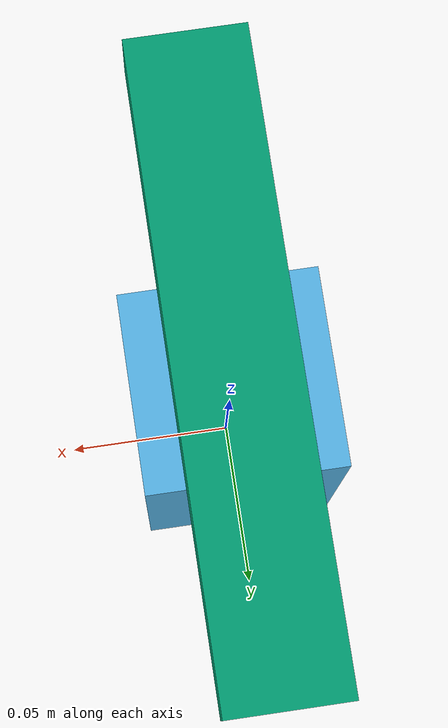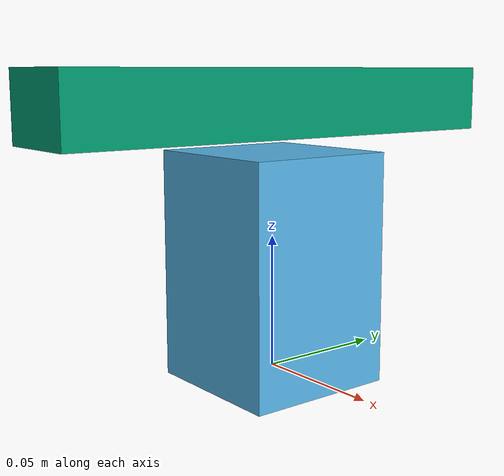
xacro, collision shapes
<?xml version="1.0"?>

<robot name="quadrotor" xmlns:xacro="http://www.ros.org/wiki/xacro">

    <xacro:property name="M_PI" value="3.1415926535897931" />

    <!-- Included URDF Files -->
    <xacro:include filename="$(find odroid)/robot_description/urdf/quad.xacro" />

    <!-- Instantiate quadrotor_base_macro once (has no parameters atm) -->
    <xacro:quadrotor_base_macro />

    <xacro:arg name="world_frame" default="world"/>
    <xacro:arg name="base_link_frame" default="base_link"/>

    <xacro:include filename="$(find odroid)/robot_description/urdf/hokuyo_utm30lx.urdf.xacro" />
    <xacro:hokuyo_utm30lx name="laser0" parent="base_link" ros_topic="scan" update_rate="40" ray_count="640" min_angle="-50" max_angle="50">
      <origin xyz="0.0 0.0 0.05" rpy="0 0 0"/>
    </xacro:hokuyo_utm30lx>

    <xacro:include filename="$(find odroid)/robot_description/urdf/asus.urdf.xacro" />
    <xacro:asus_camera name="camera" parent="base_link">
      <origin xyz="0.0 0.0 0.1" rpy="0 0 0"/>
    </xacro:asus_camera>

    <xacro:include filename="$(find odroid)/robot_description/urdf/quadrotor_plugins.gazebo.xacro" />

</robot>

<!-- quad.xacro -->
<robot name="quadrotor" xmlns:xacro="http://www.ros.org/wiki/xacro">

  <!-- Constants for robot dimensions -->
  <xacro:property name="PI" value="3.1415926535897931"/>
  <xacro:property name="mass" value="0.755" /> <!-- arbitrary value for mass -->
  <xacro:property name="width" value="0.1" /> <!-- Square dimensions (widthxwidth) of beams -->
  <xacro:property name="height1" value="2" /> <!-- Link 1 -->
  <xacro:property name="height2" value="1" /> <!-- Link 2 -->
  <xacro:property name="height3" value="1" /> <!-- Link 3 -->
  <xacro:property name="camera_link" value="0.05" /> <!-- Size of square 'camera' box -->
  <xacro:property name="axel_offset" value="0.05" /> <!-- Space btw top of beam and the each joint -->

<!-- From Matlab

J1=55710.50413e-7;
J2=55710.50413e-7;
J3=105053.7595e-7;
J=diag([J1 J2 J3]);
m=0.755;

-->

  <xacro:macro name="quadrotor_base_macro">
  <link name="base_link">
  <gravity>true</gravity>
    <inertial>
      <origin xyz="0 0 0" rpy="0 0 0"/>
      <mass value="1.374"/>
      <inertia
        ixx="0.009773" ixy="0.0" ixz="0.0"
        iyy="0.009773" iyz="0.0"
        izz="0.01749"/>
    </inertial>
    <origin xyz="0 0 0" rpy="0 0 0" />
    <collision name='collision'>
      <geometry>
        <sphere radius = "0.0001" />
      </geometry>
    </collision>

    <visual name="quadrotor_center">
  <geometry>
  <cylinder radius="0.05" length="0.02" />
  </geometry>
  <material name="orange">
  <color rgba="${255/255} ${108/255} ${10/255} 1.0"/>
  </material>
    </visual>

    <visual name='quadrotor_x_arms'>
  <origin xyz = "0.0 0.0 0.0" rpy ="0.0 1.5707 0.0" />
  <geometry>
  <cylinder radius=".006" length="0.66" />
  </geometry>
  <material name="orange">
  <ambient> 0 0 0 1 </ambient>
  </material>
    </visual>

    <visual name='quadrotor_y_arms'>
<origin xyz="0.0 0.0 0.0" rpy="0.0 1.5707 1.5707" />
<geometry>
  <cylinder radius=".006" length="0.66" />
</geometry>
<material name="orange">
<ambient> 0 0 0 1 </ambient>
</material>
    </visual>

    <visual name='motor_pos_x'>
<origin xyz="0.33 0.0 0.006" rpy="0.0 0.0 0.0" />
<geometry>
<cylinder radius=".006" length="0.024" />
</geometry>
<material name="white">
  <ambient> 0.0 0.0 0.0 1.0 </ambient>
</material>
  </visual>
    <visual name='prop_pos_x'>
<origin xyz="0.33 0.0 0.02" rpy="0.0 0.0 0.0"/>
<geometry>
<cylinder radius=".1" length="0.01" />
</geometry>
<material name="white">
<ambient> 0.5 0.5 0.5 1.0 </ambient>
</material>
    </visual>
    <visual name='motor_neg_x'>
<origin xyz ="-0.33 0.0 0.006" rpy="0.0 0.0 0.0"/>
<geometry>
<cylinder radius=".006" length="0.024"/>
</geometry>
<material name="white">
<ambient> 0.0 0.0 0.0 1.0 </ambient>
</material>
    </visual>
    <visual name='prop_neg_x'>
<origin xyz="-0.33 0.0 0.02" rpy="0.0 0.0 0.0"/>
<geometry>
<cylinder   radius=".1" length="0.01" />
</geometry>
<material name="white">
<ambient> 0.5 0.5 0.5 1.0 </ambient>
</material>
    </visual>
    <visual name='motor_pos_y'>
<origin xyz="0.0 0.33 0.006" rpy="0.0 0.0 0.0"/>
<geometry>
<cylinder radius=".006" length="0.024" />
</geometry>
<material name="white">
<ambient> 0.0 0.0 0.0 1.0 </ambient>
</material>
    </visual>
    <visual name='prop_pos_y'>
<origin xyz="0.0 0.33 0.02" rpy="0.0 0.0 0.0" />
<geometry>
<cylinder radius = ".1" length="0.01"/>
</geometry>
<material name="white">
<ambient> 0.5 0.5 0.5 1.0 </ambient>
</material>
    </visual>
    <visual name='motor_neg_y'>
<origin xyz="0.0 -0.33 0.006" rpy="0.0 0.0 0.0"/>
<geometry>
<cylinder radius=".006" length="0.024"/>
</geometry>
<material name="white">
<ambient> 0.0 0.0 0.0 1.0 </ambient>
</material>
    </visual>
    <visual name='prop_neg_y'>
<origin xyz="0.0 -0.33 0.02" rpy = "0.0 0.0 0.0"/>
<geometry>
<cylinder radius=".1" length="0.01"/>
</geometry>
<material name="white">
<ambient> 0.5 0.5 0.5 1.0 </ambient>
</material>
    </visual>

  </link>
  </xacro:macro>
</robot>

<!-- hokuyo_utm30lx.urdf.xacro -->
<robot xmlns:xacro="http://ros.org/wiki/xacro">
    <xacro:property name="M_PI" value="3.1415926535897931" />

    <xacro:macro name="hokuyo_utm30lx" params="name parent *origin ros_topic update_rate ray_count min_angle max_angle">
      <joint name="${name}_joint" type="fixed">
        <xacro:insert_block name="origin" />
        <parent link="${parent}"/>
        <child link="${name}_frame"/>
      </joint>

      <link name="${name}_frame">
        <inertial>
          <mass value="0.270" />
          <origin xyz="0 0 0" rpy="0 0 0" />
          <inertia ixx="2.632e-4" ixy="0" ixz="0" iyy="2.632e-4" iyz="0" izz="1.62e-4" />
        </inertial>
        <visual>
          <origin xyz="0 0 0" rpy="0 0 0" />
          <geometry>
          <mesh filename="package://hector_sensors_description/meshes/hokuyo_utm30lx/hokuyo_utm_30lx$(optenv TEST_SELF_FILTER).dae"/>
        </geometry>
        </visual>
        <collision>
          <origin xyz="0 0 -0.0115" rpy="0 0 0" />
          <geometry>
          <box size="0.058 0.058 0.087" />
        </geometry>
        </collision>
      </link>

      <gazebo reference="${name}_frame">
        <sensor type="ray" name="${name}">
          <always_on>true</always_on>
          <update_rate>${update_rate}</update_rate>
          <pose>0 0 0 0 0 0</pose>
          <visualize>false</visualize>
          <ray>
            <scan>
              <horizontal>
                <samples>${ray_count}</samples>
                <resolution>1</resolution>
                <min_angle>${min_angle * M_PI/180}</min_angle>
                <max_angle>${max_angle * M_PI/180}</max_angle>
              </horizontal>
            </scan>
            <range>
              <min>0.08</min>
              <max>30.0</max>
              <resolution>0.01</resolution>
            </range>
          </ray>
          <plugin name="gazebo_ros_${name}_controller" filename="libgazebo_ros_laser.so">
            <gaussianNoise>0.005</gaussianNoise>
            <alwaysOn>true</alwaysOn>
            <updateRate>${update_rate}</updateRate>
            <topicName>${ros_topic}</topicName>
            <frameName>${name}_frame</frameName>
          </plugin>
        </sensor>
      </gazebo>

    </xacro:macro>
  </robot>

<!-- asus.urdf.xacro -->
<robot xmlns:xacro="http://ros.org/wiki/xacro">
    <xacro:property name="M_PI" value="3.1415926535897931" />

    <xacro:macro name="asus_camera_model" params="name parent *origin">
      <joint name="${name}_joint" type="fixed">
        <xacro:insert_block name="origin" />
        <parent link="${parent}"/>
        <child link="${name}_link"/>
      </joint>

      <link name="${name}_link">
        <inertial>
          <mass value="0.200" />
          <origin xyz="0 0 0" rpy="0 0 0" />
          <inertia ixx="5.8083e-4" ixy="0" ixz="0" iyy="3.0833e-5" iyz="0" izz="5.9083e-4" />
        </inertial>
        <visual>
          <origin xyz="0 0 0" rpy="0 0 0" />
          <geometry>
            <mesh filename="package://hector_sensors_description/meshes/asus_camera/asus_camera_simple.dae"/>
          </geometry>
        </visual>
        <collision>
          <origin xyz="0 0 0" rpy="0 0 0" />
          <geometry>
            <box size="0.035 0.185 0.025"/>
          </geometry>
        </collision>
      </link>

      <joint name="${name}_depth_joint" type="fixed">
        <origin xyz="0.0 0.049 0.0" rpy="0 0 0" />
        <parent link="${name}_link" />
        <child link="${name}_depth_frame"/>
      </joint>

      <link name="${name}_depth_frame"/>

      <joint name="${name}_depth_optical_joint" type="fixed">
        <origin xyz="0 0 0" rpy="${-M_PI/2} 0.0 ${-M_PI/2}" />
        <parent link="${name}_depth_frame" />
        <child link="${name}_depth_optical_frame"/>
      </joint>

      <link name="${name}_depth_optical_frame"/>

      <joint name="${name}_rgb_joint" type="fixed">
        <origin xyz="0.0 0.022 0.0" rpy="0 0 0" />
        <parent link="${name}_link" />
        <child link="${name}_rgb_frame"/>
      </joint>

      <link name="${name}_rgb_frame"/>

      <joint name="${name}_rgb_optical_joint" type="fixed">
        <origin xyz="0 0 0" rpy="${-M_PI/2} 0.0 ${-M_PI/2}" />
        <parent link="${name}_rgb_frame" />
        <child link="${name}_rgb_optical_frame"/>
      </joint>

      <link name="${name}_rgb_optical_frame"/>
    </xacro:macro>

    <xacro:macro name="asus_camera" params="name parent *origin">
      <xacro:asus_camera_model name="${name}" parent="${parent}">
        <xacro:insert_block name="origin" />
      </xacro:asus_camera_model>

      <!-- ASUS Xtion PRO camera for simulation -->
      <gazebo reference="${name}_depth_frame">
        <sensor type="depth" name="${name}">
          <update_rate>20</update_rate>
          <camera>
            <horizontal_fov>${62.8 * M_PI/180.0}</horizontal_fov>
            <image>
              <format>R8G8B8</format>
              <width>64</width>
              <height>48</height>
            </image>
            <clip>
              <near>0.5</near>
              <far>9</far>
            </clip>
          </camera>
          <plugin name="${name}_camera_controller" filename="libgazebo_ros_openni_kinect.so">
            <alwaysOn>true</alwaysOn>
            <updateRate>20</updateRate>
            <imageTopicName>${name}/rgb/image_raw</imageTopicName>
            <cameraInfoTopicName>${name}/rgb/camera_info</cameraInfoTopicName>
            <depthImageTopicName>${name}/depth/image_raw</depthImageTopicName>
            <depthImageCameraInfoTopicName>${name}/depth/camera_info</depthImageCameraInfoTopicName>
            <pointCloudTopicName>${name}/depth/points</pointCloudTopicName>
            <frameName>${name}_depth_optical_frame</frameName>
            <distortion_k1>0.0</distortion_k1>
            <distortion_k2>0.0</distortion_k2>
            <distortion_k3>0.0</distortion_k3>
            <distortion_t1>0.0</distortion_t1>
            <distortion_t2>0.0</distortion_t2>
          </plugin>
        </sensor>
      </gazebo>
    </xacro:macro>
  </robot>

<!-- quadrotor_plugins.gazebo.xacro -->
<robot xmlns:xacro="http://www.ros.org/wiki/xacro">

  <arg name="world_frame" default="world"/> <!-- This should actually be "/world". See https://github.com/ros-simulation/gazebo_ros_pkgs/pull/324 -->
  <arg name="base_link_frame" default="base_link"/>

  <xacro:include filename="$(find odroid)/robot_description/urdf/quadrotor_sensors.gazebo.xacro" />

  <!-- Quadrotor Gazebo Plugins -->
  <xacro:quadrotor_sensors />

</robot>
